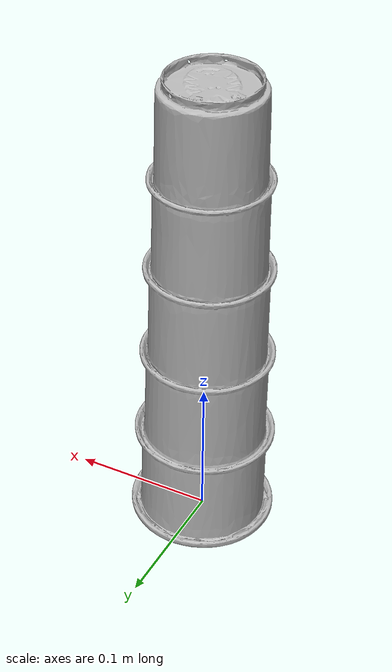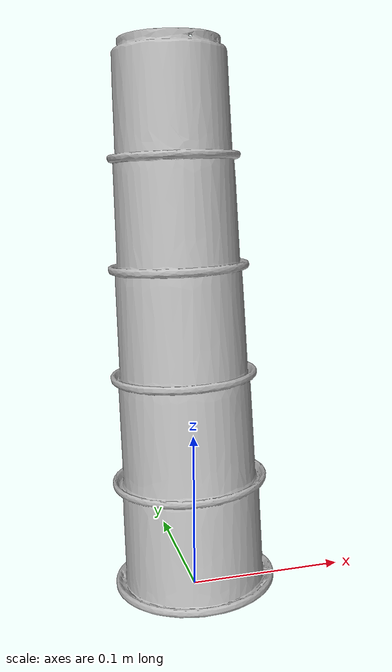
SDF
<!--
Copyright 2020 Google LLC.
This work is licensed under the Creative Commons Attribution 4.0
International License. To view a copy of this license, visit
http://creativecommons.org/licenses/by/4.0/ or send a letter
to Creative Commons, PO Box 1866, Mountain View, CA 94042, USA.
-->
<?xml version="1.0" ?>
<sdf version="1.5">
  <model name="Baby_Elements_Stacking_Cups">
    <self_collide>true</self_collide>
    <link name="link_0">
      <self_collide>1</self_collide>
      <!--estimated values for moments of inertia and mass-->
                <inertial>
                    <inertia>
                    <ixx>0.001403958333333</ixx>
                    <ixy>0</ixy>
                    <ixz>0</ixz>
                    <iyy>0.001403958333333</iyy>
                    <iyz>0</iyz>
                    <izz>0.00014125</izz>
                    </inertia>
                    <mass>0.1</mass>
                </inertial>
      <visual name="visual">
      <cast_shadows>true</cast_shadows>
        <geometry>
          <mesh>
            <uri>model://Baby_Elements_Stacking_Cups/meshes/model.dae</uri>
          </mesh>
        </geometry>
      </visual>
      <collision name="collision_0">
        <geometry>
          <mesh>
            <uri>model://Baby_Elements_Stacking_Cups/meshes/model.dae</uri>
          </mesh>
        </geometry>
      </collision>
    </link>
  </model>
</sdf>
